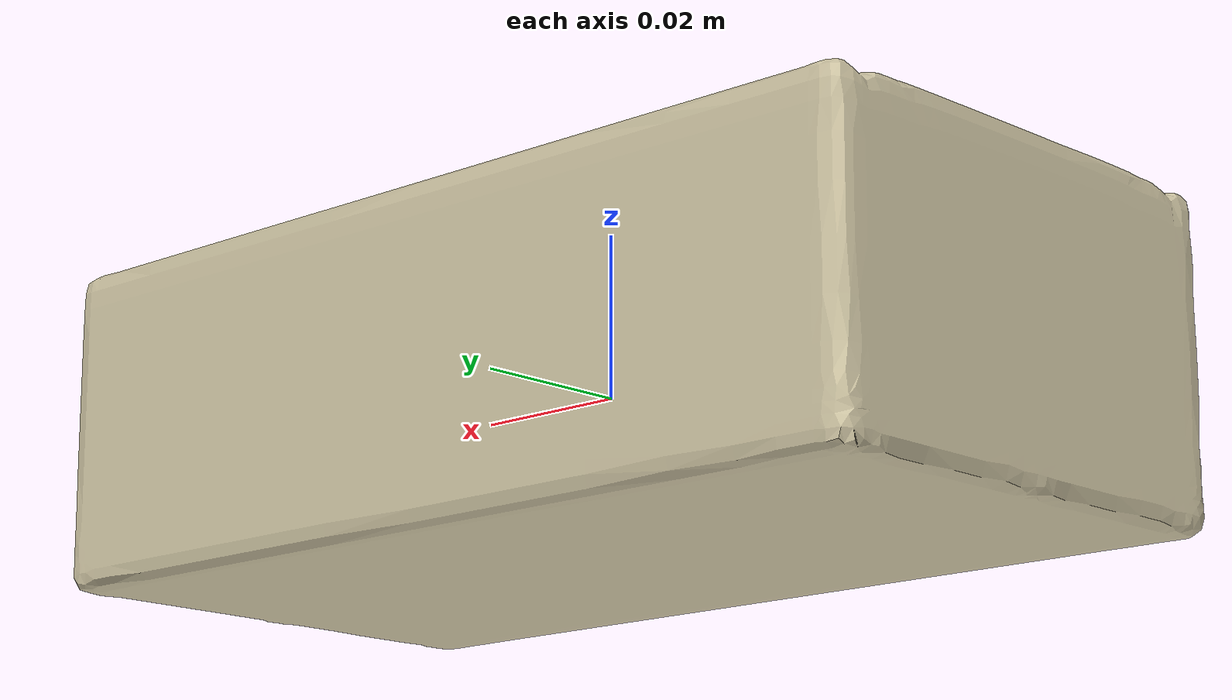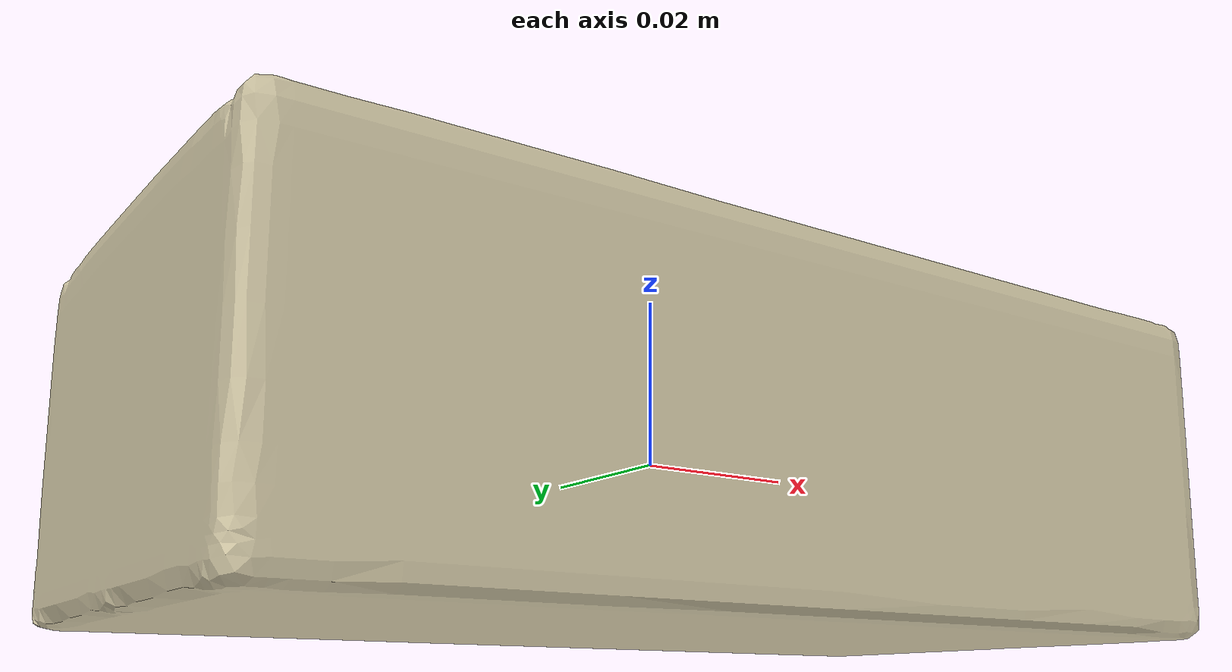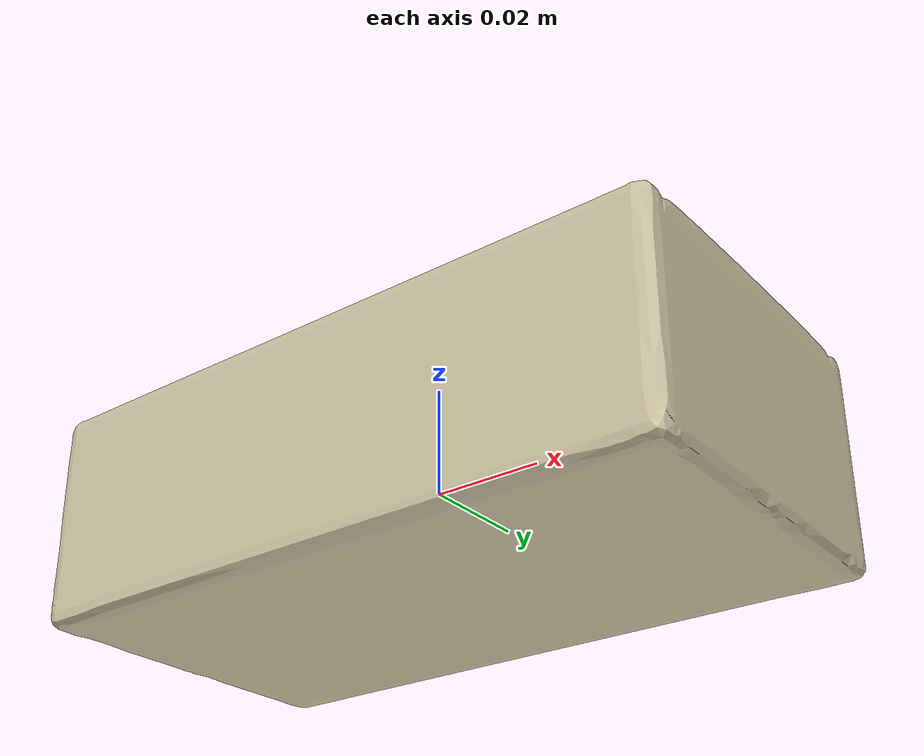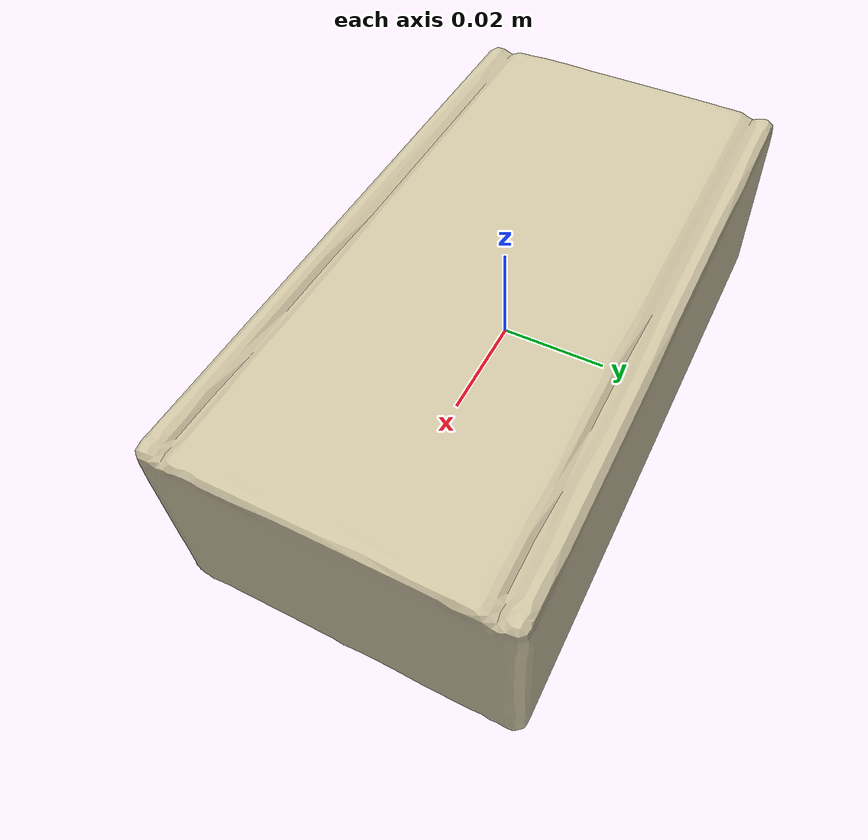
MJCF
<?xml version="1.0" ?>
<mujoco model="butter">
	<compiler meshdir="butter/meshes" texturedir="butter/textures" angle="radian" autolimits="true" balanceinertia="true" boundmass="0.000001" boundinertia="0.000001"/>
	<default>
		<default class="visual">
			<geom contype="0" conaffinity="0"/>
		</default>
		<default class="collision">
			<geom rgba="1.0 0.0 0.0 0.0"/>
		</default>
	</default>
	<asset>
		<mesh name="Butter" file="stl/Butter.stl" scale="1.0 1.0 1.0"/>
		<mesh name="Butter_001" file="stl/Butter_001.stl" scale="1.0 1.0 1.0"/>
		<material name="M_Butter" rgba="0.7989000082015991 0.7612000107765198 0.6330999732017517 1.0" emission="0.0"/>
	</asset>
	<worldbody>
		<body name="butter" pos="0.0 0.0 0.0" quat="1.0 0.0 0.0 0.0">
			<inertial mass="0.2880476415157318" pos="1.0195357891262802e-09 -8.063334000496525e-09 -9.647163824411109e-05" quat="1.0 -3.9869397028269304e-07 1.1752018247435103e-09 1.5438561540292994e-09" diaginertia="0.00013884958752896637 0.0003888639039359987 0.00045151100493967533"/>
			<geom name="Butter" type="mesh" pos="0.0 0.0 0.0" quat="1.0 0.0 0.0 0.0" mesh="Butter" material="M_Butter" class="visual"/>
			<geom name="Butter_001" type="mesh" pos="0.0 0.0 0.0" quat="1.0 0.0 0.0 0.0" mesh="Butter_001" class="collision"/>
		</body>
	</worldbody>
	<equality/>
</mujoco>
